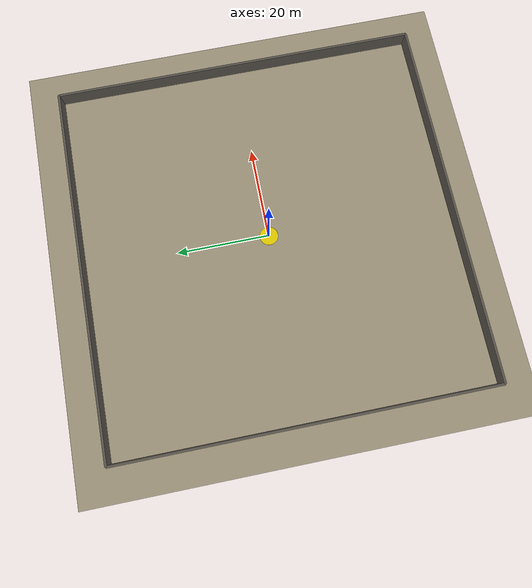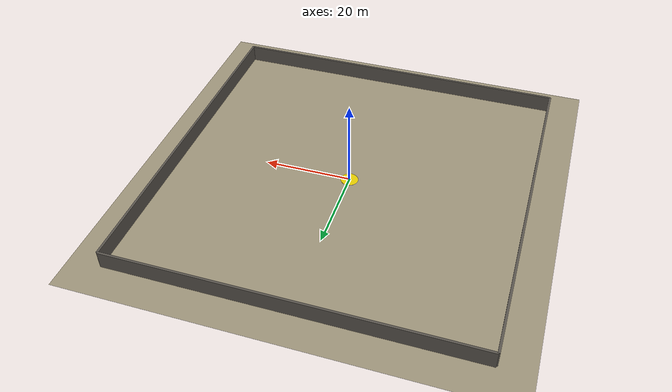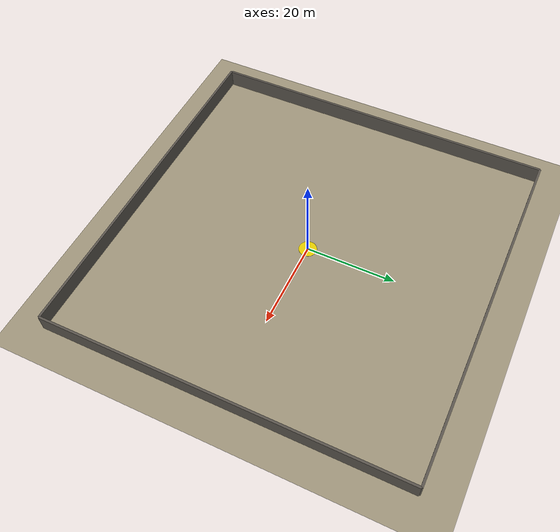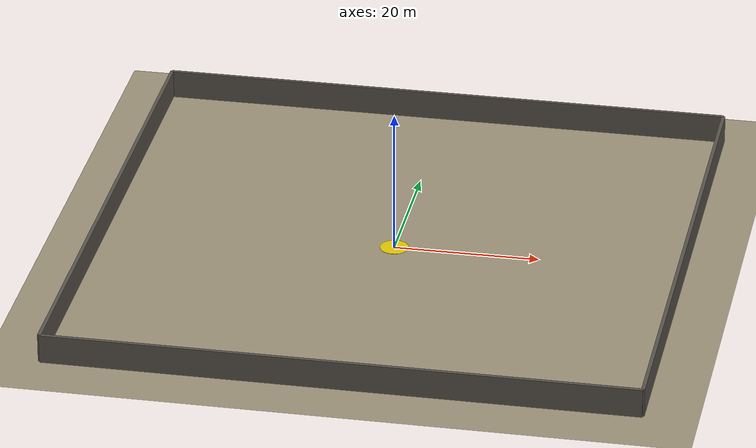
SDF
<sdf version="1.8">
 <world name="sandbox_swarm_world">
  <physics name="500hz" type="dart">
   <max_step_size>0.002</max_step_size>
   <real_time_factor>1.0</real_time_factor>
   <real_time_update_rate>500</real_time_update_rate>
  </physics>
  <plugin filename="gz-sim-physics-system" name="gz::sim::systems::Physics"/>
  <plugin filename="gz-sim-user-commands-system" name="gz::sim::systems::UserCommands"/>
  <plugin filename="gz-sim-scene-broadcaster-system" name="gz::sim::systems::SceneBroadcaster"/>
  <plugin filename="gz-sim-sensors-system" name="gz::sim::systems::Sensors">
   <render_engine>ogre2</render_engine>
  </plugin>
  <plugin filename="gz-sim-imu-system" name="gz::sim::systems::Imu"/>
  <plugin filename="gz-sim-air-pressure-system" name="gz::sim::systems::AirPressure"/>
  <plugin filename="gz-sim-magnetometer-system" name="gz::sim::systems::Magnetometer"/>
  <plugin filename="gz-sim-navsat-system" name="gz::sim::systems::NavSat"/>
  <plugin filename="gz-sim-wind-effects-system" name="gz::sim::systems::WindEffects">
   <horizontal><magnitude>0.0</magnitude><direction>1.0 0.0 0.0</direction></horizontal>
   <vertical><magnitude>0.0</magnitude></vertical>
  </plugin>
  <light name="sun" type="directional">
   <pose>0 0 40 0 0 0</pose>
   <diffuse>0.95 0.93 0.90 1</diffuse>
   <specular>0.4 0.4 0.4 1</specular>
   <direction>-0.3 0.4 -0.85</direction>
  </light>
  <model name="ground_plane">
   <static>true</static>
   <link name="link">
    <collision name="col">
     <geometry><plane><normal>0 0 1</normal><size>100 100</size></plane></geometry>
    </collision>
    <visual name="vis">
     <geometry><plane><normal>0 0 1</normal><size>100 100</size></plane></geometry>
     <material>
      <ambient>0.50 0.46 0.38 1</ambient>
      <diffuse>0.62 0.58 0.48 1</diffuse>
      <specular>0.05 0.05 0.05 1</specular>
     </material>
    </visual>
   </link>
  </model>
  <model name="wall_north">
   <static>true</static>
   <pose>0 40 2.0 0 0 0</pose>
   <link name="link">
    <collision name="col"><geometry><box><size>80 0.5 4.0</size></box></geometry></collision>
    <visual name="vis">
     <geometry><box><size>80 0.5 4.0</size></box></geometry>
     <material><ambient>0.30 0.28 0.26 1</ambient><diffuse>0.35 0.33 0.30 1</diffuse></material>
    </visual>
   </link>
  </model>
  <model name="wall_south">
   <static>true</static>
   <pose>0 -40 2.0 0 0 0</pose>
   <link name="link">
    <collision name="col"><geometry><box><size>80 0.5 4.0</size></box></geometry></collision>
    <visual name="vis">
     <geometry><box><size>80 0.5 4.0</size></box></geometry>
     <material><ambient>0.30 0.28 0.26 1</ambient><diffuse>0.35 0.33 0.30 1</diffuse></material>
    </visual>
   </link>
  </model>
  <model name="wall_east">
   <static>true</static>
   <pose>40 0 2.0 0 0 0</pose>
   <link name="link">
    <collision name="col"><geometry><box><size>0.5 80 4.0</size></box></geometry></collision>
    <visual name="vis">
     <geometry><box><size>0.5 80 4.0</size></box></geometry>
     <material><ambient>0.30 0.28 0.26 1</ambient><diffuse>0.35 0.33 0.30 1</diffuse></material>
    </visual>
   </link>
  </model>
  <model name="wall_west">
   <static>true</static>
   <pose>-40 0 2.0 0 0 0</pose>
   <link name="link">
    <collision name="col"><geometry><box><size>0.5 80 4.0</size></box></geometry></collision>
    <visual name="vis">
     <geometry><box><size>0.5 80 4.0</size></box></geometry>
     <material><ambient>0.30 0.28 0.26 1</ambient><diffuse>0.35 0.33 0.30 1</diffuse></material>
    </visual>
   </link>
  </model>
  <model name="home_helipad">
   <static>true</static>
   <pose>0 0 0.015 0 0 0</pose>
   <link name="link">
    <visual name="vis">
     <geometry><cylinder><radius>2.0</radius><length>0.03</length></cylinder></geometry>
     <material>
      <ambient>0.9 0.8 0.0 1</ambient>
      <diffuse>0.9 0.8 0.0 1</diffuse>
      <emissive>0.5 0.45 0.0 1</emissive>
     </material>
    </visual>
   </link>
  </model>
 </world>
</sdf>
